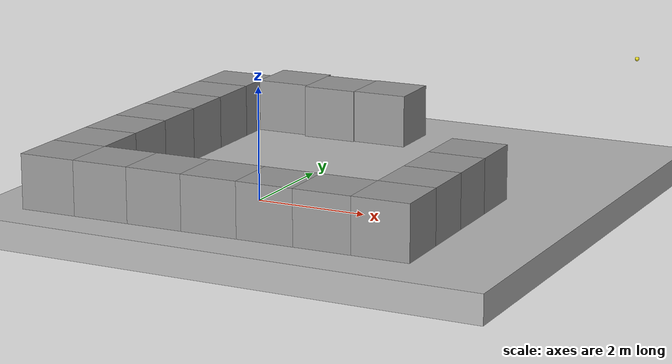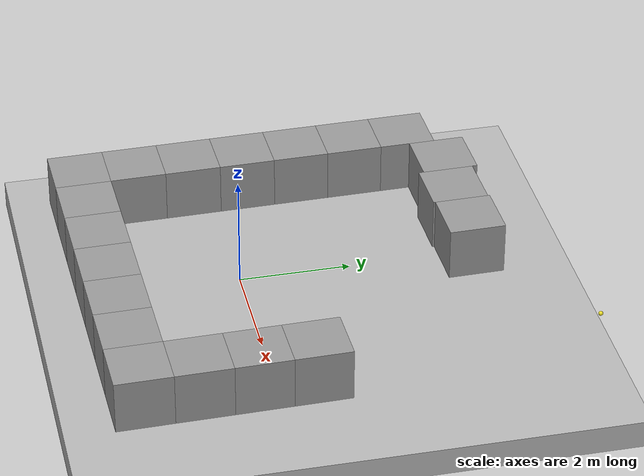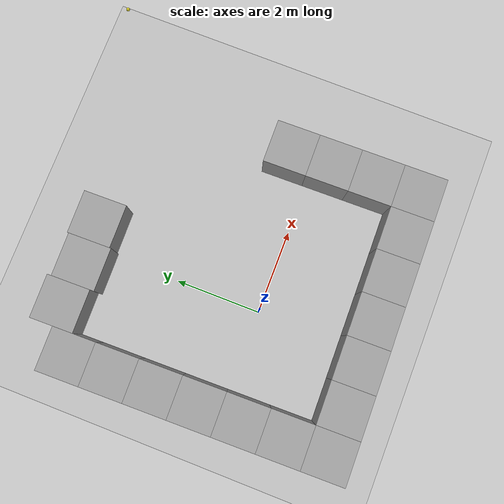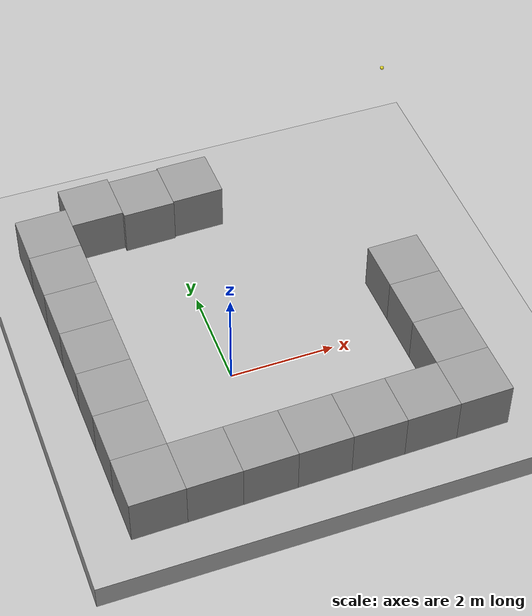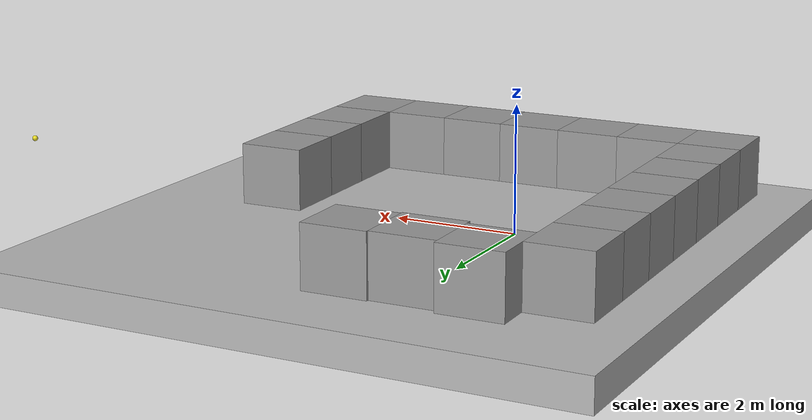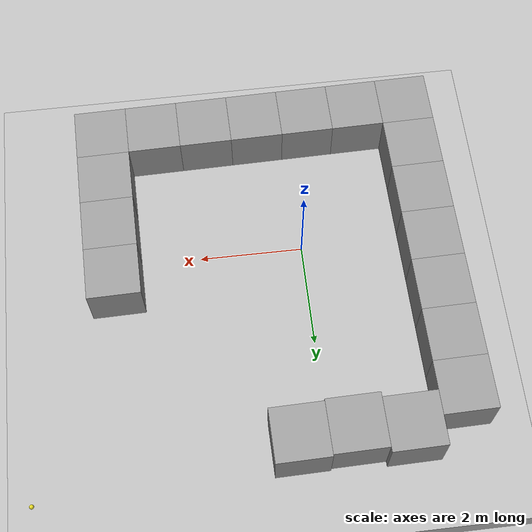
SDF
<sdf version="1.6">
 <world name="default">
  <physics name="default_physics" default="0" type="ode">
   <max_step_size>0.001</max_step_size>
   <real_time_factor>1</real_time_factor>
   <real_time_update_rate>1000</real_time_update_rate>
   <ode>
    <solver>
     <type>quick</type>
     <iters>100</iters>
     <sor>1.3</sor>
     <use_dynamic_moi_rescaling>0</use_dynamic_moi_rescaling>
    </solver>
    <constraints>
     <cfm>0</cfm>
     <erp>0.2</erp>
     <contact_max_correcting_vel>100</contact_max_correcting_vel>
     <contact_surface_layer>0.001</contact_surface_layer>
    </constraints>
   </ode>
  </physics>
  <spherical_coordinates>
   <latitude_deg>43.5083</latitude_deg>
   <longitude_deg>-89.5083</longitude_deg>
   <heading_deg>270</heading_deg>
   <surface_model>EARTH_WGS84</surface_model>
   <elevation>0</elevation>
  </spherical_coordinates>
  <light name="sun" type="directional">
   <pose>0 0 10 0 -0 0</pose>
   <diffuse>0.8 0.8 0.8 1</diffuse>
   <specular>0.1 0.1 0.1 1</specular>
   <attenuation>
    <range>1000</range>
    <constant>0.9</constant>
    <linear>0.01</linear>
    <quadratic>0.001</quadratic>
   </attenuation>
   <direction>-0.5 0.5 -1</direction>
  </light>
  <model name="ground_plane">
   <static>1</static>
   <link name="link">
    <collision name="collision">
     <geometry><plane><normal>0 0 1</normal><size>100 100</size></plane></geometry>
     <surface><friction><ode><mu>100</mu><mu2>50</mu2></ode></friction></surface>
    </collision>
    <visual name="visual">
     <cast_shadows>0</cast_shadows>
     <geometry><plane><normal>0 0 1</normal><size>100 100</size></plane></geometry>
     <material>
      <script><uri>file://media/materials/scripts/gazebo.material</uri><name>Gazebo/Grey</name></script>
     </material>
    </visual>
   </link>
  </model>
  <model name="tennis_ball">
   <link name="link">
    <pose>0 0 1 0 -0 0</pose>
    <inertial>
     <mass>0.1467</mass>
     <inertia>
      <ixx>8.25187e-05</ixx>
      <ixy>0</ixy>
      <ixz>0</ixz>
      <iyy>8.25187e-05</iyy>
      <iyz>0</iyz>
      <izz>8.25187e-05</izz>
     </inertia>
    </inertial>
    <velocity_decay><linear>0</linear><angular>0.005</angular></velocity_decay>
    <visual name="visual">
     <geometry><sphere><radius>0.0375</radius></sphere></geometry>
     <material>
      <script><uri>file://media/materials/scripts/gazebo.material</uri><name>Gazebo/Yellow</name></script>
      <ambient>1 0 0 1</ambient>
      <diffuse>1 0 0 1</diffuse>
      <specular>0.1 0.1 0.1 1</specular>
      <emissive>0 0 0 1</emissive>
     </material>
    </visual>
    <sensor name="gps" type="gps">
     <pose>0 0.252 -0.041 0 -0 0</pose>
     <update_rate>10</update_rate>
     <always_on>1</always_on>
     <gps>
      <position_sensing>
       <horizontal><noise type="gaussian"><mean>0</mean><stddev>0</stddev></noise></horizontal>
      </position_sensing>
     </gps>
    </sensor>
    <sensor name="imu" type="imu">
     <pose>0 0.252 -0.041 0 -0 0</pose>
     <update_rate>10</update_rate>
     <always_on>1</always_on>
    </sensor>
    <collision name="collision">
     <geometry><sphere><radius>0.0375</radius></sphere></geometry>
     <surface>
      <friction>
       <ode><mu>1</mu><mu2>1</mu2><fdir1>0 0 0</fdir1><slip1>0</slip1><slip2>0</slip2></ode>
       <torsional>
        <coefficient>1</coefficient>
        <patch_radius>0</patch_radius>
        <surface_radius>0.01</surface_radius>
        <use_patch_radius>0</use_patch_radius>
        <ode><slip>0</slip></ode>
       </torsional>
      </friction>
      <bounce><restitution_coefficient>0</restitution_coefficient><threshold>1e+06</threshold></bounce>
      <contact>
       <collide_without_contact>0</collide_without_contact>
       <collide_without_contact_bitmask>1</collide_without_contact_bitmask>
       <collide_bitmask>1</collide_bitmask>
       <ode>
        <soft_cfm>0</soft_cfm>
        <soft_erp>0.2</soft_erp>
        <kp>100000</kp>
        <kd>100</kd>
        <max_vel>100</max_vel>
        <min_depth>0.001</min_depth>
       </ode>
       <bullet>
        <split_impulse>1</split_impulse>
        <split_impulse_penetration_threshold>-0.01</split_impulse_penetration_threshold>
        <soft_cfm>0</soft_cfm>
        <soft_erp>0.2</soft_erp>
        <kp>100000</kp>
        <kd>100</kd>
       </bullet>
      </contact>
     </surface>
    </collision>
   </link>
   <static>1</static>
   <plugin name="TennisBallPlugin" filename="libTennisBallPlugin.so"/>
   <pose>5 5 1 0 -0 0</pose>
  </model>
  <model name="ai_test">
   <link name="link_0">
    <pose>-4.0317 0.631579 0 0 -0 0</pose>
    <inertial>
     <mass>1</mass>
     <inertia>
      <ixx>0.166667</ixx>
      <ixy>0</ixy>
      <ixz>0</ixz>
      <iyy>0.166667</iyy>
      <iyz>0</iyz>
      <izz>0.166667</izz>
     </inertia>
    </inertial>
    <visual name="visual">
     <geometry><box><size>1 1 1</size></box></geometry>
     <material>
      <lighting>1</lighting>
      <script><uri>file://media/materials/scripts/gazebo.material</uri><name>Gazebo/Grey</name></script>
      <ambient>0.3 0.3 0.3 1</ambient>
      <diffuse>0.7 0.7 0.7 1</diffuse>
      <specular>0.01 0.01 0.01 1</specular>
      <emissive>0 0 0 1</emissive>
     </material>
    </visual>
    <collision name="collision">
     <geometry><box><size>1 1 1</size></box></geometry>
     <surface>
      <friction>
       <ode><mu>1</mu><mu2>1</mu2><fdir1>0 0 0</fdir1><slip1>0</slip1><slip2>0</slip2></ode>
       <torsional>
        <coefficient>1</coefficient>
        <patch_radius>0</patch_radius>
        <surface_radius>0</surface_radius>
        <use_patch_radius>1</use_patch_radius>
        <ode><slip>0</slip></ode>
       </torsional>
      </friction>
      <bounce><restitution_coefficient>0</restitution_coefficient><threshold>1e+06</threshold></bounce>
      <contact>
       <collide_without_contact>0</collide_without_contact>
       <collide_without_contact_bitmask>1</collide_without_contact_bitmask>
       <collide_bitmask>1</collide_bitmask>
       <ode>
        <soft_cfm>0</soft_cfm>
        <soft_erp>0.2</soft_erp>
        <kp>1e+13</kp>
        <kd>1</kd>
        <max_vel>0.01</max_vel>
        <min_depth>0</min_depth>
       </ode>
       <bullet>
        <split_impulse>1</split_impulse>
        <split_impulse_penetration_threshold>-0.01</split_impulse_penetration_threshold>
        <soft_cfm>0</soft_cfm>
        <soft_erp>0.2</soft_erp>
        <kp>1e+13</kp>
        <kd>1</kd>
       </bullet>
      </contact>
     </surface>
    </collision>
   </link>
   <link name="link_1">
    <pose>-3.9979 -0.368421 0 0 -0 0</pose>
    <inertial>
     <mass>1</mass>
     <inertia>
      <ixx>0.166667</ixx>
      <ixy>0</ixy>
      <ixz>0</ixz>
      <iyy>0.166667</iyy>
      <iyz>0</iyz>
      <izz>0.166667</izz>
     </inertia>
    </inertial>
    <visual name="visual">
     <geometry><box><size>1 1 1</size></box></geometry>
     <material>
      <lighting>1</lighting>
      <script><uri>file://media/materials/scripts/gazebo.material</uri><name>Gazebo/Grey</name></script>
      <ambient>0.3 0.3 0.3 1</ambient>
      <diffuse>0.7 0.7 0.7 1</diffuse>
      <specular>0.01 0.01 0.01 1</specular>
      <emissive>0 0 0 1</emissive>
     </material>
    </visual>
    <collision name="collision">
     <geometry><box><size>1 1 1</size></box></geometry>
     <surface>
      <friction>
       <ode><mu>1</mu><mu2>1</mu2><fdir1>0 0 0</fdir1><slip1>0</slip1><slip2>0</slip2></ode>
       <torsional>
        <coefficient>1</coefficient>
        <patch_radius>0</patch_radius>
        <surface_radius>0</surface_radius>
        <use_patch_radius>1</use_patch_radius>
        <ode><slip>0</slip></ode>
       </torsional>
      </friction>
      <bounce><restitution_coefficient>0</restitution_coefficient><threshold>1e+06</threshold></bounce>
      <contact>
       <collide_without_contact>0</collide_without_contact>
       <collide_without_contact_bitmask>1</collide_without_contact_bitmask>
       <collide_bitmask>1</collide_bitmask>
       <ode>
        <soft_cfm>0</soft_cfm>
        <soft_erp>0.2</soft_erp>
        <kp>1e+13</kp>
        <kd>1</kd>
        <max_vel>0.01</max_vel>
        <min_depth>0</min_depth>
       </ode>
       <bullet>
        <split_impulse>1</split_impulse>
        <split_impulse_penetration_threshold>-0.01</split_impulse_penetration_threshold>
        <soft_cfm>0</soft_cfm>
        <soft_erp>0.2</soft_erp>
        <kp>1e+13</kp>
        <kd>1</kd>
       </bullet>
      </contact>
     </surface>
    </collision>
   </link>
   <link name="link_10">
    <pose>2.44506 1.63158 0 0 -0 0</pose>
    <inertial>
     <mass>1</mass>
     <inertia>
      <ixx>0.166667</ixx>
      <ixy>0</ixy>
      <ixz>0</ixz>
      <iyy>0.166667</iyy>
      <iyz>0</iyz>
      <izz>0.166667</izz>
     </inertia>
    </inertial>
    <visual name="visual">
     <geometry><box><size>1 1 1</size></box></geometry>
     <material>
      <lighting>1</lighting>
      <script><uri>file://media/materials/scripts/gazebo.material</uri><name>Gazebo/Grey</name></script>
      <ambient>0.3 0.3 0.3 1</ambient>
      <diffuse>0.7 0.7 0.7 1</diffuse>
      <specular>0.01 0.01 0.01 1</specular>
      <emissive>0 0 0 1</emissive>
     </material>
    </visual>
    <collision name="collision">
     <geometry><box><size>1 1 1</size></box></geometry>
     <surface>
      <friction>
       <ode><mu>1</mu><mu2>1</mu2><fdir1>0 0 0</fdir1><slip1>0</slip1><slip2>0</slip2></ode>
       <torsional>
        <coefficient>1</coefficient>
        <patch_radius>0</patch_radius>
        <surface_radius>0</surface_radius>
        <use_patch_radius>1</use_patch_radius>
        <ode><slip>0</slip></ode>
       </torsional>
      </friction>
      <bounce><restitution_coefficient>0</restitution_coefficient><threshold>1e+06</threshold></bounce>
      <contact>
       <collide_without_contact>0</collide_without_contact>
       <collide_without_contact_bitmask>1</collide_without_contact_bitmask>
       <collide_bitmask>1</collide_bitmask>
       <ode>
        <soft_cfm>0</soft_cfm>
        <soft_erp>0.2</soft_erp>
        <kp>1e+13</kp>
        <kd>1</kd>
        <max_vel>0.01</max_vel>
        <min_depth>0</min_depth>
       </ode>
       <bullet>
        <split_impulse>1</split_impulse>
        <split_impulse_penetration_threshold>-0.01</split_impulse_penetration_threshold>
        <soft_cfm>0</soft_cfm>
        <soft_erp>0.2</soft_erp>
        <kp>1e+13</kp>
        <kd>1</kd>
       </bullet>
      </contact>
     </surface>
    </collision>
   </link>
   <link name="link_11">
    <pose>2.44506 2.63158 0 0 -0 0</pose>
    <inertial>
     <mass>1</mass>
     <inertia>
      <ixx>0.166667</ixx>
      <ixy>0</ixy>
      <ixz>0</ixz>
      <iyy>0.166667</iyy>
      <iyz>0</iyz>
      <izz>0.166667</izz>
     </inertia>
    </inertial>
    <visual name="visual">
     <geometry><box><size>1 1 1</size></box></geometry>
     <material>
      <lighting>1</lighting>
      <script><uri>file://media/materials/scripts/gazebo.material</uri><name>Gazebo/Grey</name></script>
      <ambient>0.3 0.3 0.3 1</ambient>
      <diffuse>0.7 0.7 0.7 1</diffuse>
      <specular>0.01 0.01 0.01 1</specular>
      <emissive>0 0 0 1</emissive>
     </material>
    </visual>
    <collision name="collision">
     <geometry><box><size>1 1 1</size></box></geometry>
     <surface>
      <friction>
       <ode><mu>1</mu><mu2>1</mu2><fdir1>0 0 0</fdir1><slip1>0</slip1><slip2>0</slip2></ode>
       <torsional>
        <coefficient>1</coefficient>
        <patch_radius>0</patch_radius>
        <surface_radius>0</surface_radius>
        <use_patch_radius>1</use_patch_radius>
        <ode><slip>0</slip></ode>
       </torsional>
      </friction>
      <bounce><restitution_coefficient>0</restitution_coefficient><threshold>1e+06</threshold></bounce>
      <contact>
       <collide_without_contact>0</collide_without_contact>
       <collide_without_contact_bitmask>1</collide_without_contact_bitmask>
       <collide_bitmask>1</collide_bitmask>
       <ode>
        <soft_cfm>0</soft_cfm>
        <soft_erp>0.2</soft_erp>
        <kp>1e+13</kp>
        <kd>1</kd>
        <max_vel>0.01</max_vel>
        <min_depth>0</min_depth>
       </ode>
       <bullet>
        <split_impulse>1</split_impulse>
        <split_impulse_penetration_threshold>-0.01</split_impulse_penetration_threshold>
        <soft_cfm>0</soft_cfm>
        <soft_erp>0.2</soft_erp>
        <kp>1e+13</kp>
        <kd>1</kd>
       </bullet>
      </contact>
     </surface>
    </collision>
   </link>
   <link name="link_12">
    <pose>2.44506 3.63158 0 0 -0 0</pose>
    <inertial>
     <mass>1</mass>
     <inertia>
      <ixx>0.166667</ixx>
      <ixy>0</ixy>
      <ixz>0</ixz>
      <iyy>0.166667</iyy>
      <iyz>0</iyz>
      <izz>0.166667</izz>
     </inertia>
    </inertial>
    <visual name="visual">
     <geometry><box><size>1 1 1</size></box></geometry>
     <material>
      <lighting>1</lighting>
      <script><uri>file://media/materials/scripts/gazebo.material</uri><name>Gazebo/Grey</name></script>
      <ambient>0.3 0.3 0.3 1</ambient>
      <diffuse>0.7 0.7 0.7 1</diffuse>
      <specular>0.01 0.01 0.01 1</specular>
      <emissive>0 0 0 1</emissive>
     </material>
    </visual>
    <collision name="collision">
     <geometry><box><size>1 1 1</size></box></geometry>
     <surface>
      <friction>
       <ode><mu>1</mu><mu2>1</mu2><fdir1>0 0 0</fdir1><slip1>0</slip1><slip2>0</slip2></ode>
       <torsional>
        <coefficient>1</coefficient>
        <patch_radius>0</patch_radius>
        <surface_radius>0</surface_radius>
        <use_patch_radius>1</use_patch_radius>
        <ode><slip>0</slip></ode>
       </torsional>
      </friction>
      <bounce><restitution_coefficient>0</restitution_coefficient><threshold>1e+06</threshold></bounce>
      <contact>
       <collide_without_contact>0</collide_without_contact>
       <collide_without_contact_bitmask>1</collide_without_contact_bitmask>
       <collide_bitmask>1</collide_bitmask>
       <ode>
        <soft_cfm>0</soft_cfm>
        <soft_erp>0.2</soft_erp>
        <kp>1e+13</kp>
        <kd>1</kd>
        <max_vel>0.01</max_vel>
        <min_depth>0</min_depth>
       </ode>
       <bullet>
        <split_impulse>1</split_impulse>
        <split_impulse_penetration_threshold>-0.01</split_impulse_penetration_threshold>
        <soft_cfm>0</soft_cfm>
        <soft_erp>0.2</soft_erp>
        <kp>1e+13</kp>
        <kd>1</kd>
       </bullet>
      </contact>
     </surface>
    </collision>
   </link>
   <link name="link_13">
    <pose>2.44506 0.631579 0 0 -0 0</pose>
    <inertial>
     <mass>1</mass>
     <inertia>
      <ixx>0.166667</ixx>
      <ixy>0</ixy>
      <ixz>0</ixz>
      <iyy>0.166667</iyy>
      <iyz>0</iyz>
      <izz>0.166667</izz>
     </inertia>
    </inertial>
    <visual name="visual">
     <geometry><box><size>1 1 1</size></box></geometry>
     <material>
      <lighting>1</lighting>
      <script><uri>file://media/materials/scripts/gazebo.material</uri><name>Gazebo/Grey</name></script>
      <ambient>0.3 0.3 0.3 1</ambient>
      <diffuse>0.7 0.7 0.7 1</diffuse>
      <specular>0.01 0.01 0.01 1</specular>
      <emissive>0 0 0 1</emissive>
     </material>
    </visual>
    <collision name="collision">
     <geometry><box><size>1 1 1</size></box></geometry>
     <surface>
      <friction>
       <ode><mu>1</mu><mu2>1</mu2><fdir1>0 0 0</fdir1><slip1>0</slip1><slip2>0</slip2></ode>
       <torsional>
        <coefficient>1</coefficient>
        <patch_radius>0</patch_radius>
        <surface_radius>0</surface_radius>
        <use_patch_radius>1</use_patch_radius>
        <ode><slip>0</slip></ode>
       </torsional>
      </friction>
      <bounce><restitution_coefficient>0</restitution_coefficient><threshold>1e+06</threshold></bounce>
      <contact>
       <collide_without_contact>0</collide_without_contact>
       <collide_without_contact_bitmask>1</collide_without_contact_bitmask>
       <collide_bitmask>1</collide_bitmask>
       <ode>
        <soft_cfm>0</soft_cfm>
        <soft_erp>0.2</soft_erp>
        <kp>1e+13</kp>
        <kd>1</kd>
        <max_vel>0.01</max_vel>
        <min_depth>0</min_depth>
       </ode>
       <bullet>
        <split_impulse>1</split_impulse>
        <split_impulse_penetration_threshold>-0.01</split_impulse_penetration_threshold>
        <soft_cfm>0</soft_cfm>
        <soft_erp>0.2</soft_erp>
        <kp>1e+13</kp>
        <kd>1</kd>
       </bullet>
      </contact>
     </surface>
    </collision>
   </link>
   <link name="link_14">
    <pose>2.44506 -0.368421 0 0 -0 0</pose>
    <inertial>
     <mass>1</mass>
     <inertia>
      <ixx>0.166667</ixx>
      <ixy>0</ixy>
      <ixz>0</ixz>
      <iyy>0.166667</iyy>
      <iyz>0</iyz>
      <izz>0.166667</izz>
     </inertia>
    </inertial>
    <visual name="visual">
     <geometry><box><size>1 1 1</size></box></geometry>
     <material>
      <lighting>1</lighting>
      <script><uri>file://media/materials/scripts/gazebo.material</uri><name>Gazebo/Grey</name></script>
      <ambient>0.3 0.3 0.3 1</ambient>
      <diffuse>0.7 0.7 0.7 1</diffuse>
      <specular>0.01 0.01 0.01 1</specular>
      <emissive>0 0 0 1</emissive>
     </material>
    </visual>
    <collision name="collision">
     <geometry><box><size>1 1 1</size></box></geometry>
     <surface>
      <friction>
       <ode><mu>1</mu><mu2>1</mu2><fdir1>0 0 0</fdir1><slip1>0</slip1><slip2>0</slip2></ode>
       <torsional>
        <coefficient>1</coefficient>
        <patch_radius>0</patch_radius>
        <surface_radius>0</surface_radius>
        <use_patch_radius>1</use_patch_radius>
        <ode><slip>0</slip></ode>
       </torsional>
      </friction>
      <bounce><restitution_coefficient>0</restitution_coefficient><threshold>1e+06</threshold></bounce>
      <contact>
       <collide_without_contact>0</collide_without_contact>
       <collide_without_contact_bitmask>1</collide_without_contact_bitmask>
       <collide_bitmask>1</collide_bitmask>
       <ode>
        <soft_cfm>0</soft_cfm>
        <soft_erp>0.2</soft_erp>
        <kp>1e+13</kp>
        <kd>1</kd>
        <max_vel>0.01</max_vel>
        <min_depth>0</min_depth>
       </ode>
       <bullet>
        <split_impulse>1</split_impulse>
        <split_impulse_penetration_threshold>-0.01</split_impulse_penetration_threshold>
        <soft_cfm>0</soft_cfm>
        <soft_erp>0.2</soft_erp>
        <kp>1e+13</kp>
        <kd>1</kd>
       </bullet>
      </contact>
     </surface>
    </collision>
   </link>
   <link name="link_15">
    <pose>2.44506 -1.36842 0 0 -0 0</pose>
    <inertial>
     <mass>1</mass>
     <inertia>
      <ixx>0.166667</ixx>
      <ixy>0</ixy>
      <ixz>0</ixz>
      <iyy>0.166667</iyy>
      <iyz>0</iyz>
      <izz>0.166667</izz>
     </inertia>
    </inertial>
    <visual name="visual">
     <geometry><box><size>1 1 1</size></box></geometry>
     <material>
      <lighting>1</lighting>
      <script><uri>file://media/materials/scripts/gazebo.material</uri><name>Gazebo/Grey</name></script>
      <ambient>0.3 0.3 0.3 1</ambient>
      <diffuse>0.7 0.7 0.7 1</diffuse>
      <specular>0.01 0.01 0.01 1</specular>
      <emissive>0 0 0 1</emissive>
     </material>
    </visual>
    <collision name="collision">
     <geometry><box><size>1 1 1</size></box></geometry>
     <surface>
      <friction>
       <ode><mu>1</mu><mu2>1</mu2><fdir1>0 0 0</fdir1><slip1>0</slip1><slip2>0</slip2></ode>
       <torsional>
        <coefficient>1</coefficient>
        <patch_radius>0</patch_radius>
        <surface_radius>0</surface_radius>
        <use_patch_radius>1</use_patch_radius>
        <ode><slip>0</slip></ode>
       </torsional>
      </friction>
      <bounce><restitution_coefficient>0</restitution_coefficient><threshold>1e+06</threshold></bounce>
      <contact>
       <collide_without_contact>0</collide_without_contact>
       <collide_without_contact_bitmask>1</collide_without_contact_bitmask>
       <collide_bitmask>1</collide_bitmask>
       <ode>
        <soft_cfm>0</soft_cfm>
        <soft_erp>0.2</soft_erp>
        <kp>1e+13</kp>
        <kd>1</kd>
        <max_vel>0.01</max_vel>
        <min_depth>0</min_depth>
       </ode>
       <bullet>
        <split_impulse>1</split_impulse>
        <split_impulse_penetration_threshold>-0.01</split_impulse_penetration_threshold>
        <soft_cfm>0</soft_cfm>
        <soft_erp>0.2</soft_erp>
        <kp>1e+13</kp>
        <kd>1</kd>
       </bullet>
      </contact>
     </surface>
    </collision>
   </link>
   <link name="link_16">
    <pose>2.44506 -2.36842 0 0 -0 0</pose>
    <inertial>
     <mass>1</mass>
     <inertia>
      <ixx>0.166667</ixx>
      <ixy>0</ixy>
      <ixz>0</ixz>
      <iyy>0.166667</iyy>
      <iyz>0</iyz>
      <izz>0.166667</izz>
     </inertia>
    </inertial>
    <visual name="visual">
     <geometry><box><size>1 1 1</size></box></geometry>
     <material>
      <lighting>1</lighting>
      <script><uri>file://media/materials/scripts/gazebo.material</uri><name>Gazebo/Grey</name></script>
      <ambient>0.3 0.3 0.3 1</ambient>
      <diffuse>0.7 0.7 0.7 1</diffuse>
      <specular>0.01 0.01 0.01 1</specular>
      <emissive>0 0 0 1</emissive>
     </material>
    </visual>
    <collision name="collision">
     <geometry><box><size>1 1 1</size></box></geometry>
     <surface>
      <friction>
       <ode><mu>1</mu><mu2>1</mu2><fdir1>0 0 0</fdir1><slip1>0</slip1><slip2>0</slip2></ode>
       <torsional>
        <coefficient>1</coefficient>
        <patch_radius>0</patch_radius>
        <surface_radius>0</surface_radius>
        <use_patch_radius>1</use_patch_radius>
        <ode><slip>0</slip></ode>
       </torsional>
      </friction>
      <bounce><restitution_coefficient>0</restitution_coefficient><threshold>1e+06</threshold></bounce>
      <contact>
       <collide_without_contact>0</collide_without_contact>
       <collide_without_contact_bitmask>1</collide_without_contact_bitmask>
       <collide_bitmask>1</collide_bitmask>
       <ode>
        <soft_cfm>0</soft_cfm>
        <soft_erp>0.2</soft_erp>
        <kp>1e+13</kp>
        <kd>1</kd>
        <max_vel>0.01</max_vel>
        <min_depth>0</min_depth>
       </ode>
       <bullet>
        <split_impulse>1</split_impulse>
        <split_impulse_penetration_threshold>-0.01</split_impulse_penetration_threshold>
        <soft_cfm>0</soft_cfm>
        <soft_erp>0.2</soft_erp>
        <kp>1e+13</kp>
        <kd>1</kd>
       </bullet>
      </contact>
     </surface>
    </collision>
   </link>
   <link name="link_17">
    <pose>1.44506 -2.36842 0 0 -0 0</pose>
    <inertial>
     <mass>1</mass>
     <inertia>
      <ixx>0.166667</ixx>
      <ixy>0</ixy>
      <ixz>0</ixz>
      <iyy>0.166667</iyy>
      <iyz>0</iyz>
      <izz>0.166667</izz>
     </inertia>
    </inertial>
    <visual name="visual">
     <geometry><box><size>1 1 1</size></box></geometry>
     <material>
      <lighting>1</lighting>
      <script><uri>file://media/materials/scripts/gazebo.material</uri><name>Gazebo/Grey</name></script>
      <ambient>0.3 0.3 0.3 1</ambient>
      <diffuse>0.7 0.7 0.7 1</diffuse>
      <specular>0.01 0.01 0.01 1</specular>
      <emissive>0 0 0 1</emissive>
     </material>
    </visual>
    <collision name="collision">
     <geometry><box><size>1 1 1</size></box></geometry>
     <surface>
      <friction>
       <ode><mu>1</mu><mu2>1</mu2><fdir1>0 0 0</fdir1><slip1>0</slip1><slip2>0</slip2></ode>
       <torsional>
        <coefficient>1</coefficient>
        <patch_radius>0</patch_radius>
        <surface_radius>0</surface_radius>
        <use_patch_radius>1</use_patch_radius>
        <ode><slip>0</slip></ode>
       </torsional>
      </friction>
      <bounce><restitution_coefficient>0</restitution_coefficient><threshold>1e+06</threshold></bounce>
      <contact>
       <collide_without_contact>0</collide_without_contact>
       <collide_without_contact_bitmask>1</collide_without_contact_bitmask>
       <collide_bitmask>1</collide_bitmask>
       <ode>
        <soft_cfm>0</soft_cfm>
        <soft_erp>0.2</soft_erp>
        <kp>1e+13</kp>
        <kd>1</kd>
        <max_vel>0.01</max_vel>
        <min_depth>0</min_depth>
       </ode>
       <bullet>
        <split_impulse>1</split_impulse>
        <split_impulse_penetration_threshold>-0.01</split_impulse_penetration_threshold>
        <soft_cfm>0</soft_cfm>
        <soft_erp>0.2</soft_erp>
        <kp>1e+13</kp>
        <kd>1</kd>
       </bullet>
      </contact>
     </surface>
    </collision>
   </link>
   <link name="link_18">
    <pose>0.445061 -2.36842 0 0 -0 0</pose>
    <inertial>
     <mass>1</mass>
     <inertia>
      <ixx>0.166667</ixx>
      <ixy>0</ixy>
      <ixz>0</ixz>
      <iyy>0.166667</iyy>
      <iyz>0</iyz>
      <izz>0.166667</izz>
     </inertia>
    </inertial>
    <visual name="visual">
     <geometry><box><size>1 1 1</size></box></geometry>
     <material>
      <lighting>1</lighting>
      <script><uri>file://media/materials/scripts/gazebo.material</uri><name>Gazebo/Grey</name></script>
      <ambient>0.3 0.3 0.3 1</ambient>
      <diffuse>0.7 0.7 0.7 1</diffuse>
      <specular>0.01 0.01 0.01 1</specular>
      <emissive>0 0 0 1</emissive>
     </material>
    </visual>
    <collision name="collision">
     <geometry><box><size>1 1 1</size></box></geometry>
     <surface>
      <friction>
       <ode><mu>1</mu><mu2>1</mu2><fdir1>0 0 0</fdir1><slip1>0</slip1><slip2>0</slip2></ode>
       <torsional>
        <coefficient>1</coefficient>
        <patch_radius>0</patch_radius>
        <surface_radius>0</surface_radius>
        <use_patch_radius>1</use_patch_radius>
        <ode><slip>0</slip></ode>
       </torsional>
      </friction>
      <bounce><restitution_coefficient>0</restitution_coefficient><threshold>1e+06</threshold></bounce>
      <contact>
       <collide_without_contact>0</collide_without_contact>
       <collide_without_contact_bitmask>1</collide_without_contact_bitmask>
       <collide_bitmask>1</collide_bitmask>
       <ode>
        <soft_cfm>0</soft_cfm>
        <soft_erp>0.2</soft_erp>
        <kp>1e+13</kp>
        <kd>1</kd>
        <max_vel>0.01</max_vel>
        <min_depth>0</min_depth>
       </ode>
       <bullet>
        <split_impulse>1</split_impulse>
        <split_impulse_penetration_threshold>-0.01</split_impulse_penetration_threshold>
        <soft_cfm>0</soft_cfm>
        <soft_erp>0.2</soft_erp>
        <kp>1e+13</kp>
        <kd>1</kd>
       </bullet>
      </contact>
     </surface>
    </collision>
   </link>
   <link name="link_19">
    <pose>-0.554939 -2.36842 0 0 -0 0</pose>
    <inertial>
     <mass>1</mass>
     <inertia>
      <ixx>0.166667</ixx>
      <ixy>0</ixy>
      <ixz>0</ixz>
      <iyy>0.166667</iyy>
      <iyz>0</iyz>
      <izz>0.166667</izz>
     </inertia>
    </inertial>
    <visual name="visual">
     <geometry><box><size>1 1 1</size></box></geometry>
     <material>
      <lighting>1</lighting>
      <script><uri>file://media/materials/scripts/gazebo.material</uri><name>Gazebo/Grey</name></script>
      <ambient>0.3 0.3 0.3 1</ambient>
      <diffuse>0.7 0.7 0.7 1</diffuse>
      <specular>0.01 0.01 0.01 1</specular>
      <emissive>0 0 0 1</emissive>
     </material>
    </visual>
    <collision name="collision">
     <geometry><box><size>1 1 1</size></box></geometry>
     <surface>
      <friction>
       <ode><mu>1</mu><mu2>1</mu2><fdir1>0 0 0</fdir1><slip1>0</slip1><slip2>0</slip2></ode>
       <torsional>
        <coefficient>1</coefficient>
        <patch_radius>0</patch_radius>
        <surface_radius>0</surface_radius>
        <use_patch_radius>1</use_patch_radius>
        <ode><slip>0</slip></ode>
       </torsional>
      </friction>
      <bounce><restitution_coefficient>0</restitution_coefficient><threshold>1e+06</threshold></bounce>
      <contact>
       <collide_without_contact>0</collide_without_contact>
       <collide_without_contact_bitmask>1</collide_without_contact_bitmask>
       <collide_bitmask>1</collide_bitmask>
       <ode>
        <soft_cfm>0</soft_cfm>
        <soft_erp>0.2</soft_erp>
        <kp>1e+13</kp>
        <kd>1</kd>
        <max_vel>0.01</max_vel>
        <min_depth>0</min_depth>
       </ode>
       <bullet>
        <split_impulse>1</split_impulse>
        <split_impulse_penetration_threshold>-0.01</split_impulse_penetration_threshold>
        <soft_cfm>0</soft_cfm>
        <soft_erp>0.2</soft_erp>
        <kp>1e+13</kp>
        <kd>1</kd>
       </bullet>
      </contact>
     </surface>
    </collision>
   </link>
   <link name="link_20">
    <pose>-1.55494 -2.36842 0 0 -0 0</pose>
    <inertial>
     <mass>1</mass>
     <inertia>
      <ixx>0.166667</ixx>
      <ixy>0</ixy>
      <ixz>0</ixz>
      <iyy>0.166667</iyy>
      <iyz>0</iyz>
      <izz>0.166667</izz>
     </inertia>
    </inertial>
    <visual name="visual">
     <geometry><box><size>1 1 1</size></box></geometry>
     <material>
      <lighting>1</lighting>
      <script><uri>file://media/materials/scripts/gazebo.material</uri><name>Gazebo/Grey</name></script>
      <ambient>0.3 0.3 0.3 1</ambient>
      <diffuse>0.7 0.7 0.7 1</diffuse>
      <specular>0.01 0.01 0.01 1</specular>
      <emissive>0 0 0 1</emissive>
     </material>
    </visual>
    <collision name="collision">
     <geometry><box><size>1 1 1</size></box></geometry>
     <surface>
      <friction>
       <ode><mu>1</mu><mu2>1</mu2><fdir1>0 0 0</fdir1><slip1>0</slip1><slip2>0</slip2></ode>
       <torsional>
        <coefficient>1</coefficient>
        <patch_radius>0</patch_radius>
        <surface_radius>0</surface_radius>
        <use_patch_radius>1</use_patch_radius>
        <ode><slip>0</slip></ode>
       </torsional>
      </friction>
      <bounce><restitution_coefficient>0</restitution_coefficient><threshold>1e+06</threshold></bounce>
      <contact>
       <collide_without_contact>0</collide_without_contact>
       <collide_without_contact_bitmask>1</collide_without_contact_bitmask>
       <collide_bitmask>1</collide_bitmask>
       <ode>
        <soft_cfm>0</soft_cfm>
        <soft_erp>0.2</soft_erp>
        <kp>1e+13</kp>
        <kd>1</kd>
        <max_vel>0.01</max_vel>
        <min_depth>0</min_depth>
       </ode>
       <bullet>
        <split_impulse>1</split_impulse>
        <split_impulse_penetration_threshold>-0.01</split_impulse_penetration_threshold>
        <soft_cfm>0</soft_cfm>
        <soft_erp>0.2</soft_erp>
        <kp>1e+13</kp>
        <kd>1</kd>
       </bullet>
      </contact>
     </surface>
    </collision>
   </link>
   <link name="link_21">
    <pose>-2.55494 -2.36842 0 0 -0 0</pose>
    <inertial>
     <mass>1</mass>
     <inertia>
      <ixx>0.166667</ixx>
      <ixy>0</ixy>
      <ixz>0</ixz>
      <iyy>0.166667</iyy>
      <iyz>0</iyz>
      <izz>0.166667</izz>
     </inertia>
    </inertial>
    <visual name="visual">
     <geometry><box><size>1 1 1</size></box></geometry>
     <material>
      <lighting>1</lighting>
      <script><uri>file://media/materials/scripts/gazebo.material</uri><name>Gazebo/Grey</name></script>
      <ambient>0.3 0.3 0.3 1</ambient>
      <diffuse>0.7 0.7 0.7 1</diffuse>
      <specular>0.01 0.01 0.01 1</specular>
      <emissive>0 0 0 1</emissive>
     </material>
    </visual>
    <collision name="collision">
     <geometry><box><size>1 1 1</size></box></geometry>
     <surface>
      <friction>
       <ode><mu>1</mu><mu2>1</mu2><fdir1>0 0 0</fdir1><slip1>0</slip1><slip2>0</slip2></ode>
       <torsional>
        <coefficient>1</coefficient>
        <patch_radius>0</patch_radius>
        <surface_radius>0</surface_radius>
        <use_patch_radius>1</use_patch_radius>
        <ode><slip>0</slip></ode>
       </torsional>
      </friction>
      <bounce><restitution_coefficient>0</restitution_coefficient><threshold>1e+06</threshold></bounce>
      <contact>
       <collide_without_contact>0</collide_without_contact>
       <collide_without_contact_bitmask>1</collide_without_contact_bitmask>
       <collide_bitmask>1</collide_bitmask>
       <ode>
        <soft_cfm>0</soft_cfm>
        <soft_erp>0.2</soft_erp>
        <kp>1e+13</kp>
        <kd>1</kd>
        <max_vel>0.01</max_vel>
        <min_depth>0</min_depth>
       </ode>
       <bullet>
        <split_impulse>1</split_impulse>
        <split_impulse_penetration_threshold>-0.01</split_impulse_penetration_threshold>
        <soft_cfm>0</soft_cfm>
        <soft_erp>0.2</soft_erp>
        <kp>1e+13</kp>
        <kd>1</kd>
       </bullet>
      </contact>
     </surface>
    </collision>
   </link>
   <link name="link_4">
    <pose>-0.554939 3.63158 0 0 -0 0</pose>
    <inertial>
     <mass>1</mass>
     <inertia>
      <ixx>0.166667</ixx>
      <ixy>0</ixy>
      <ixz>0</ixz>
      <iyy>0.166667</iyy>
      <iyz>0</iyz>
      <izz>0.166667</izz>
     </inertia>
    </inertial>
    <visual name="visual">
     <geometry><box><size>1 1 1</size></box></geometry>
     <material>
      <lighting>1</lighting>
      <script><uri>file://media/materials/scripts/gazebo.material</uri><name>Gazebo/Grey</name></script>
      <ambient>0.3 0.3 0.3 1</ambient>
      <diffuse>0.7 0.7 0.7 1</diffuse>
      <specular>0.01 0.01 0.01 1</specular>
      <emissive>0 0 0 1</emissive>
     </material>
    </visual>
    <collision name="collision">
     <geometry><box><size>1 1 1</size></box></geometry>
     <surface>
      <friction>
       <ode><mu>1</mu><mu2>1</mu2><fdir1>0 0 0</fdir1><slip1>0</slip1><slip2>0</slip2></ode>
       <torsional>
        <coefficient>1</coefficient>
        <patch_radius>0</patch_radius>
        <surface_radius>0</surface_radius>
        <use_patch_radius>1</use_patch_radius>
        <ode><slip>0</slip></ode>
       </torsional>
      </friction>
      <bounce><restitution_coefficient>0</restitution_coefficient><threshold>1e+06</threshold></bounce>
      <contact>
       <collide_without_contact>0</collide_without_contact>
       <collide_without_contact_bitmask>1</collide_without_contact_bitmask>
       <collide_bitmask>1</collide_bitmask>
       <ode>
        <soft_cfm>0</soft_cfm>
        <soft_erp>0.2</soft_erp>
        <kp>1e+13</kp>
        <kd>1</kd>
        <max_vel>0.01</max_vel>
        <min_depth>0</min_depth>
       </ode>
       <bullet>
        <split_impulse>1</split_impulse>
        <split_impulse_penetration_threshold>-0.01</split_impulse_penetration_threshold>
        <soft_cfm>0</soft_cfm>
        <soft_erp>0.2</soft_erp>
        <kp>1e+13</kp>
        <kd>1</kd>
       </bullet>
      </contact>
     </surface>
    </collision>
   </link>
   <link name="link_5">
    <pose>0.445061 3.63158 0 0 -0 0</pose>
    <inertial>
     <mass>1</mass>
     <inertia>
      <ixx>0.166667</ixx>
      <ixy>0</ixy>
      <ixz>0</ixz>
      <iyy>0.166667</iyy>
      <iyz>0</iyz>
      <izz>0.166667</izz>
     </inertia>
    </inertial>
    <visual name="visual">
     <geometry><box><size>1 1 1</size></box></geometry>
     <material>
      <lighting>1</lighting>
      <script><uri>file://media/materials/scripts/gazebo.material</uri><name>Gazebo/Grey</name></script>
      <ambient>0.3 0.3 0.3 1</ambient>
      <diffuse>0.7 0.7 0.7 1</diffuse>
      <specular>0.01 0.01 0.01 1</specular>
      <emissive>0 0 0 1</emissive>
     </material>
    </visual>
    <collision name="collision">
     <geometry><box><size>1 1 1</size></box></geometry>
     <surface>
      <friction>
       <ode><mu>1</mu><mu2>1</mu2><fdir1>0 0 0</fdir1><slip1>0</slip1><slip2>0</slip2></ode>
       <torsional>
        <coefficient>1</coefficient>
        <patch_radius>0</patch_radius>
        <surface_radius>0</surface_radius>
        <use_patch_radius>1</use_patch_radius>
        <ode><slip>0</slip></ode>
       </torsional>
      </friction>
      <bounce><restitution_coefficient>0</restitution_coefficient><threshold>1e+06</threshold></bounce>
      <contact>
       <collide_without_contact>0</collide_without_contact>
       <collide_without_contact_bitmask>1</collide_without_contact_bitmask>
       <collide_bitmask>1</collide_bitmask>
       <ode>
        <soft_cfm>0</soft_cfm>
        <soft_erp>0.2</soft_erp>
        <kp>1e+13</kp>
        <kd>1</kd>
        <max_vel>0.01</max_vel>
        <min_depth>0</min_depth>
       </ode>
       <bullet>
        <split_impulse>1</split_impulse>
        <split_impulse_penetration_threshold>-0.01</split_impulse_penetration_threshold>
        <soft_cfm>0</soft_cfm>
        <soft_erp>0.2</soft_erp>
        <kp>1e+13</kp>
        <kd>1</kd>
       </bullet>
      </contact>
     </surface>
    </collision>
   </link>
   <link name="link_6">
    <pose>-4.09137 -1.36842 0 0 -0 0</pose>
    <inertial>
     <mass>1</mass>
     <inertia>
      <ixx>0.166667</ixx>
      <ixy>0</ixy>
      <ixz>0</ixz>
      <iyy>0.166667</iyy>
      <iyz>0</iyz>
      <izz>0.166667</izz>
     </inertia>
    </inertial>
    <visual name="visual">
     <geometry><box><size>1 1 1</size></box></geometry>
     <material>
      <lighting>1</lighting>
      <script><uri>file://media/materials/scripts/gazebo.material</uri><name>Gazebo/Grey</name></script>
      <ambient>0.3 0.3 0.3 1</ambient>
      <diffuse>0.7 0.7 0.7 1</diffuse>
      <specular>0.01 0.01 0.01 1</specular>
      <emissive>0 0 0 1</emissive>
     </material>
    </visual>
    <collision name="collision">
     <geometry><box><size>1 1 1</size></box></geometry>
     <surface>
      <friction>
       <ode><mu>1</mu><mu2>1</mu2><fdir1>0 0 0</fdir1><slip1>0</slip1><slip2>0</slip2></ode>
       <torsional>
        <coefficient>1</coefficient>
        <patch_radius>0</patch_radius>
        <surface_radius>0</surface_radius>
        <use_patch_radius>1</use_patch_radius>
        <ode><slip>0</slip></ode>
       </torsional>
      </friction>
      <bounce><restitution_coefficient>0</restitution_coefficient><threshold>1e+06</threshold></bounce>
      <contact>
       <collide_without_contact>0</collide_without_contact>
       <collide_without_contact_bitmask>1</collide_without_contact_bitmask>
       <collide_bitmask>1</collide_bitmask>
       <ode>
        <soft_cfm>0</soft_cfm>
        <soft_erp>0.2</soft_erp>
        <kp>1e+13</kp>
        <kd>1</kd>
        <max_vel>0.01</max_vel>
        <min_depth>0</min_depth>
       </ode>
       <bullet>
        <split_impulse>1</split_impulse>
        <split_impulse_penetration_threshold>-0.01</split_impulse_penetration_threshold>
        <soft_cfm>0</soft_cfm>
        <soft_erp>0.2</soft_erp>
        <kp>1e+13</kp>
        <kd>1</kd>
       </bullet>
      </contact>
     </surface>
    </collision>
   </link>
   <link name="link_7">
    <pose>-3.55494 -2.36842 0 0 -0 0</pose>
    <inertial>
     <mass>1</mass>
     <inertia>
      <ixx>0.166667</ixx>
      <ixy>0</ixy>
      <ixz>0</ixz>
      <iyy>0.166667</iyy>
      <iyz>0</iyz>
      <izz>0.166667</izz>
     </inertia>
    </inertial>
    <visual name="visual">
     <geometry><box><size>1 1 1</size></box></geometry>
     <material>
      <lighting>1</lighting>
      <script><uri>file://media/materials/scripts/gazebo.material</uri><name>Gazebo/Grey</name></script>
      <ambient>0.3 0.3 0.3 1</ambient>
      <diffuse>0.7 0.7 0.7 1</diffuse>
      <specular>0.01 0.01 0.01 1</specular>
      <emissive>0 0 0 1</emissive>
     </material>
    </visual>
    <collision name="collision">
     <geometry><box><size>1 1 1</size></box></geometry>
     <surface>
      <friction>
       <ode><mu>1</mu><mu2>1</mu2><fdir1>0 0 0</fdir1><slip1>0</slip1><slip2>0</slip2></ode>
       <torsional>
        <coefficient>1</coefficient>
        <patch_radius>0</patch_radius>
        <surface_radius>0</surface_radius>
        <use_patch_radius>1</use_patch_radius>
        <ode><slip>0</slip></ode>
       </torsional>
      </friction>
      <bounce><restitution_coefficient>0</restitution_coefficient><threshold>1e+06</threshold></bounce>
      <contact>
       <collide_without_contact>0</collide_without_contact>
       <collide_without_contact_bitmask>1</collide_without_contact_bitmask>
       <collide_bitmask>1</collide_bitmask>
       <ode>
        <soft_cfm>0</soft_cfm>
        <soft_erp>0.2</soft_erp>
        <kp>1e+13</kp>
        <kd>1</kd>
        <max_vel>0.01</max_vel>
        <min_depth>0</min_depth>
       </ode>
       <bullet>
        <split_impulse>1</split_impulse>
        <split_impulse_penetration_threshold>-0.01</split_impulse_penetration_threshold>
        <soft_cfm>0</soft_cfm>
        <soft_erp>0.2</soft_erp>
        <kp>1e+13</kp>
        <kd>1</kd>
       </bullet>
      </contact>
     </surface>
    </collision>
   </link>
   <link name="link_8">
    <pose>1.44506 3.63158 0 0 -0 0</pose>
    <inertial>
     <mass>1</mass>
     <inertia>
      <ixx>0.166667</ixx>
      <ixy>0</ixy>
      <ixz>0</ixz>
      <iyy>0.166667</iyy>
      <iyz>0</iyz>
      <izz>0.166667</izz>
     </inertia>
    </inertial>
    <visual name="visual">
     <geometry><box><size>1 1 1</size></box></geometry>
     <material>
      <lighting>1</lighting>
      <script><uri>file://media/materials/scripts/gazebo.material</uri><name>Gazebo/Grey</name></script>
      <ambient>0.3 0.3 0.3 1</ambient>
      <diffuse>0.7 0.7 0.7 1</diffuse>
      <specular>0.01 0.01 0.01 1</specular>
      <emissive>0 0 0 1</emissive>
     </material>
    </visual>
    <collision name="collision">
     <geometry><box><size>1 1 1</size></box></geometry>
     <surface>
      <friction>
       <ode><mu>1</mu><mu2>1</mu2><fdir1>0 0 0</fdir1><slip1>0</slip1><slip2>0</slip2></ode>
       <torsional>
        <coefficient>1</coefficient>
        <patch_radius>0</patch_radius>
        <surface_radius>0</surface_radius>
        <use_patch_radius>1</use_patch_radius>
        <ode><slip>0</slip></ode>
       </torsional>
      </friction>
      <bounce><restitution_coefficient>0</restitution_coefficient><threshold>1e+06</threshold></bounce>
      <contact>
       <collide_without_contact>0</collide_without_contact>
       <collide_without_contact_bitmask>1</collide_without_contact_bitmask>
       <collide_bitmask>1</collide_bitmask>
       <ode>
        <soft_cfm>0</soft_cfm>
        <soft_erp>0.2</soft_erp>
        <kp>1e+13</kp>
        <kd>1</kd>
        <max_vel>0.01</max_vel>
        <min_depth>0</min_depth>
       </ode>
       <bullet>
        <split_impulse>1</split_impulse>
        <split_impulse_penetration_threshold>-0.01</split_impulse_penetration_threshold>
        <soft_cfm>0</soft_cfm>
        <soft_erp>0.2</soft_erp>
        <kp>1e+13</kp>
        <kd>1</kd>
       </bullet>
      </contact>
     </surface>
    </collision>
   </link>
   <static>0</static>
   <pose>0 0 0.7 0 0 -1.55366</pose>
  </model>
  <model name="camGround"><static>1</static><link name="camGround"/></model>
  <model name="box">
   <static>1</static>
   <link name="box">
    <visual name="visual"><geometry><box><size>40 40 0.5</size></box></geometry></visual>
    <collision name="visual">
     <geometry><box><size>20 20 0.5</size></box></geometry>
     <surface><friction><ode><mu>0.2</mu><mu2>0.2</mu2></ode></friction></surface>
    </collision>
   </link>
  </model>
  <gravity>0 0 -9.8</gravity>
  <magnetic_field>6e-06 2.3e-05 -4.2e-05</magnetic_field>
  <atmosphere type="adiabatic"/>
  <scene><ambient>0.4 0.4 0.4 1</ambient><background>0.7 0.7 0.7 1</background><shadows>1</shadows></scene>
 </world>
</sdf>
